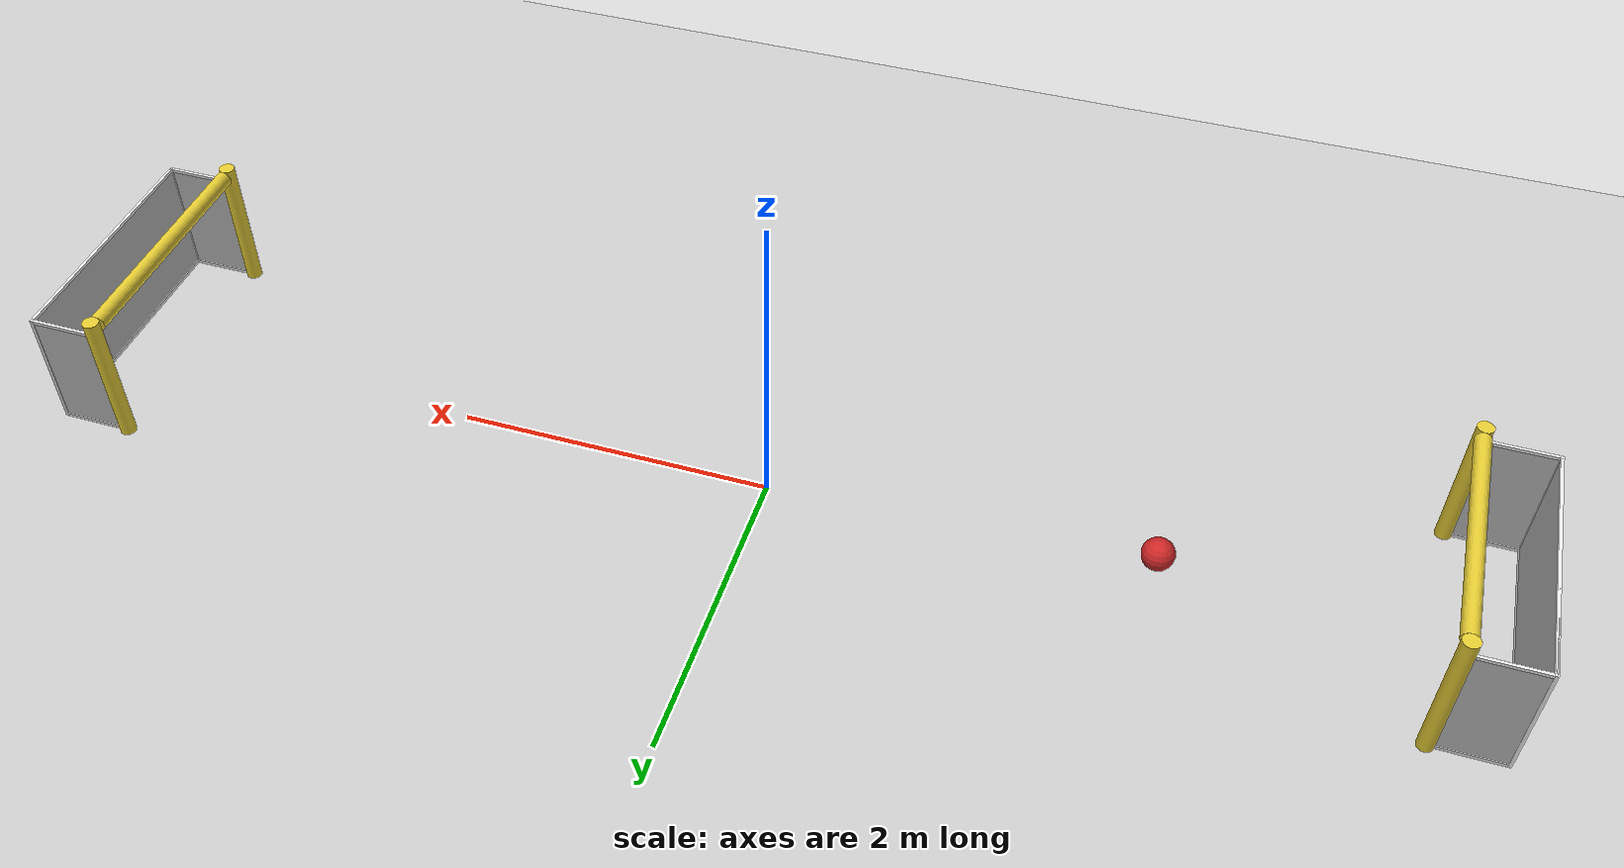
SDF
<sdf version="1.7">
 <world name="empty_world">
  <model name="ground_plane">
   <static>1</static>
   <link name="link">
    <collision name="collision">
     <geometry><plane><normal>0 0 1</normal><size>100 100</size></plane></geometry>
     <surface><friction><ode><mu>100</mu><mu2>50</mu2></ode></friction></surface>
    </collision>
    <visual name="visual">
     <cast_shadows>0</cast_shadows>
     <geometry><plane><normal>0 0 1</normal><size>100 100</size></plane></geometry>
     <material>
      <script><uri>file://media/materials/scripts/gazebo.material</uri><name>Gazebo/Grey</name></script>
     </material>
    </visual>
   </link>
  </model>
  <light name="sun" type="directional">
   <pose>0 0 10 0 -0 0</pose>
   <diffuse>0.8 0.8 0.8 1</diffuse>
   <specular>0.2 0.2 0.2 1</specular>
   <attenuation>
    <range>1000</range>
    <constant>0.9</constant>
    <linear>0.01</linear>
    <quadratic>0.001</quadratic>
   </attenuation>
   <direction>-0.5 0.1 -0.9</direction>
   <spot><inner_angle>0</inner_angle><outer_angle>0</outer_angle><falloff>0</falloff></spot>
  </light>
  <gravity>0 0 -9.8</gravity>
  <magnetic_field>6e-06 2.3e-05 -4.2e-05</magnetic_field>
  <atmosphere type="adiabatic"/>
  <physics type="ode">
   <max_step_size>0.001</max_step_size>
   <real_time_factor>1</real_time_factor>
   <real_time_update_rate>1000</real_time_update_rate>
  </physics>
  <scene><ambient>0.4 0.4 0.4 1</ambient><background>0.7 0.7 0.7 1</background><shadows>1</shadows></scene>
  <spherical_coordinates>
   <surface_model>EARTH_WGS84</surface_model>
   <latitude_deg>0</latitude_deg>
   <longitude_deg>0</longitude_deg>
   <elevation>0</elevation>
   <heading_deg>0</heading_deg>
  </spherical_coordinates>
  <model name="RoboCup 2014 SPL Goal">
   <static>1</static>
   <link name="left_post">
    <pose>0 0.8 0.45 0 -0 0</pose>
    <collision name="collision">
     <geometry><cylinder><radius>0.05</radius><length>0.9</length></cylinder></geometry>
    </collision>
    <visual name="visual">
     <geometry><cylinder><radius>0.05</radius><length>0.9</length></cylinder></geometry>
     <material>
      <script><uri>file://media/materials/scripts/gazebo.material</uri><name>Gazebo/ZincYellow</name></script>
     </material>
    </visual>
   </link>
   <link name="left_support_horiz_lower">
    <pose>0.24 0.8 0.01 0 -0 0</pose>
    <collision name="collision"><geometry><box><size>0.38 0.02 0.02</size></box></geometry></collision>
    <visual name="visual">
     <geometry><box><size>0.38 0.02 0.02</size></box></geometry>
     <material>
      <script><uri>file://media/materials/scripts/gazebo.material</uri><name>Gazebo/White</name></script>
     </material>
    </visual>
   </link>
   <link name="left_support_horiz_upper">
    <pose>0.24 0.8 0.79 0 -0 0</pose>
    <collision name="collision"><geometry><box><size>0.38 0.02 0.02</size></box></geometry></collision>
    <visual name="visual">
     <geometry><box><size>0.38 0.02 0.02</size></box></geometry>
     <material>
      <script><uri>file://media/materials/scripts/gazebo.material</uri><name>Gazebo/White</name></script>
     </material>
    </visual>
   </link>
   <link name="left_support_vertical">
    <pose>0.44 0.8 0.4 3.14159 1.57079 3.14159</pose>
    <collision name="collision"><geometry><box><size>0.8 0.02 0.02</size></box></geometry></collision>
    <visual name="visual">
     <geometry><box><size>0.8 0.02 0.02</size></box></geometry>
     <material>
      <script><uri>file://media/materials/scripts/gazebo.material</uri><name>Gazebo/White</name></script>
     </material>
    </visual>
   </link>
   <link name="right_support_horiz_lower">
    <pose>0.24 -0.8 0.01 0 -0 0</pose>
    <collision name="collision"><geometry><box><size>0.38 0.02 0.02</size></box></geometry></collision>
    <visual name="visual">
     <geometry><box><size>0.38 0.02 0.02</size></box></geometry>
     <material>
      <script><uri>file://media/materials/scripts/gazebo.material</uri><name>Gazebo/White</name></script>
     </material>
    </visual>
   </link>
   <link name="right_support_horiz_upper">
    <pose>0.24 -0.8 0.79 0 -0 0</pose>
    <collision name="collision"><geometry><box><size>0.38 0.02 0.02</size></box></geometry></collision>
    <visual name="visual">
     <geometry><box><size>0.38 0.02 0.02</size></box></geometry>
     <material>
      <script><uri>file://media/materials/scripts/gazebo.material</uri><name>Gazebo/White</name></script>
     </material>
    </visual>
   </link>
   <link name="right_support_vertical">
    <pose>0.44 -0.8 0.4 3.14159 1.57079 3.14159</pose>
    <collision name="collision"><geometry><box><size>0.8 0.02 0.02</size></box></geometry></collision>
    <visual name="visual">
     <geometry><box><size>0.8 0.02 0.02</size></box></geometry>
     <material>
      <script><uri>file://media/materials/scripts/gazebo.material</uri><name>Gazebo/White</name></script>
     </material>
    </visual>
   </link>
   <link name="center_support_horiz_lower">
    <pose>0.44 0 0.01 3.14159 1.57079 3.14159</pose>
    <collision name="collision"><geometry><box><size>0.02 1.58 0.02</size></box></geometry></collision>
    <visual name="visual">
     <geometry><box><size>0.02 1.58 0.02</size></box></geometry>
     <material>
      <script><uri>file://media/materials/scripts/gazebo.material</uri><name>Gazebo/White</name></script>
     </material>
    </visual>
   </link>
   <link name="center_support_horiz_upper">
    <pose>0.44 0 0.79 3.14159 1.57079 3.14159</pose>
    <collision name="collision"><geometry><box><size>0.02 1.58 0.02</size></box></geometry></collision>
    <visual name="visual">
     <geometry><box><size>0.02 1.58 0.02</size></box></geometry>
     <material>
      <script><uri>file://media/materials/scripts/gazebo.material</uri><name>Gazebo/White</name></script>
     </material>
    </visual>
   </link>
   <link name="right_post">
    <pose>0 -0.8 0.45 0 -0 0</pose>
    <collision name="collision">
     <geometry><cylinder><radius>0.05</radius><length>0.9</length></cylinder></geometry>
    </collision>
    <visual name="visual">
     <geometry><cylinder><radius>0.05</radius><length>0.9</length></cylinder></geometry>
     <material>
      <script><uri>file://media/materials/scripts/gazebo.material</uri><name>Gazebo/ZincYellow</name></script>
     </material>
    </visual>
   </link>
   <link name="crossbar">
    <pose>0 0 0.85 1.57 1.57 0</pose>
    <collision name="collision">
     <geometry><cylinder><radius>0.05</radius><length>1.5</length></cylinder></geometry>
    </collision>
    <visual name="visual">
     <geometry><cylinder><radius>0.05</radius><length>1.5</length></cylinder></geometry>
     <material>
      <script><uri>file://media/materials/scripts/gazebo.material</uri><name>Gazebo/ZincYellow</name></script>
     </material>
    </visual>
   </link>
   <link name="center_net">
    <pose>0.44 0 0.4 0 -0 0</pose>
    <collision name="collision"><geometry><box><size>0.01 1.6 0.8</size></box></geometry></collision>
    <visual name="visual">
     <geometry><box><size>0.01 1.6 0.8</size></box></geometry>
     <material>
      <script>
       <uri>model://robocup09_spl_field/materials/scripts/</uri>
       <uri>model://robocup09_spl_field/materials/textures/</uri>
       <name>RoboCup/Net</name>
      </script>
     </material>
    </visual>
   </link>
   <link name="left_net">
    <pose>0.24 0.8 0.4 0 -0 0</pose>
    <collision name="collision"><geometry><box><size>0.38 0.01 0.76</size></box></geometry></collision>
    <visual name="visual">
     <geometry><box><size>0.38 0.01 0.76</size></box></geometry>
     <material>
      <script>
       <uri>model://robocup09_spl_field/materials/scripts/</uri>
       <uri>model://robocup09_spl_field/materials/textures/</uri>
       <name>RoboCup/Net</name>
      </script>
     </material>
    </visual>
   </link>
   <link name="right_net">
    <pose>0.24 -0.8 0.4 0 -0 0</pose>
    <collision name="collision"><geometry><box><size>0.38 0.01 0.76</size></box></geometry></collision>
    <visual name="visual">
     <geometry><box><size>0.38 0.01 0.76</size></box></geometry>
     <material>
      <script>
       <uri>model://robocup09_spl_field/materials/scripts/</uri>
       <uri>model://robocup09_spl_field/materials/textures/</uri>
       <name>RoboCup/Net</name>
      </script>
     </material>
    </visual>
   </link>
   <pose>4.00021 -0.051118 0 0 -0 0</pose>
  </model>
  <model name="RoboCup 2014 SPL Goal_0">
   <static>1</static>
   <link name="left_post">
    <pose>0 0.8 0.45 0 -0 0</pose>
    <collision name="collision">
     <geometry><cylinder><radius>0.05</radius><length>0.9</length></cylinder></geometry>
    </collision>
    <visual name="visual">
     <geometry><cylinder><radius>0.05</radius><length>0.9</length></cylinder></geometry>
     <material>
      <script><uri>file://media/materials/scripts/gazebo.material</uri><name>Gazebo/ZincYellow</name></script>
     </material>
    </visual>
   </link>
   <link name="left_support_horiz_lower">
    <pose>0.24 0.8 0.01 0 -0 0</pose>
    <collision name="collision"><geometry><box><size>0.38 0.02 0.02</size></box></geometry></collision>
    <visual name="visual">
     <geometry><box><size>0.38 0.02 0.02</size></box></geometry>
     <material>
      <script><uri>file://media/materials/scripts/gazebo.material</uri><name>Gazebo/White</name></script>
     </material>
    </visual>
   </link>
   <link name="left_support_horiz_upper">
    <pose>0.24 0.8 0.79 0 -0 0</pose>
    <collision name="collision"><geometry><box><size>0.38 0.02 0.02</size></box></geometry></collision>
    <visual name="visual">
     <geometry><box><size>0.38 0.02 0.02</size></box></geometry>
     <material>
      <script><uri>file://media/materials/scripts/gazebo.material</uri><name>Gazebo/White</name></script>
     </material>
    </visual>
   </link>
   <link name="left_support_vertical">
    <pose>0.44 0.8 0.4 3.14159 1.57079 3.14159</pose>
    <collision name="collision"><geometry><box><size>0.8 0.02 0.02</size></box></geometry></collision>
    <visual name="visual">
     <geometry><box><size>0.8 0.02 0.02</size></box></geometry>
     <material>
      <script><uri>file://media/materials/scripts/gazebo.material</uri><name>Gazebo/White</name></script>
     </material>
    </visual>
   </link>
   <link name="right_support_horiz_lower">
    <pose>0.24 -0.8 0.01 0 -0 0</pose>
    <collision name="collision"><geometry><box><size>0.38 0.02 0.02</size></box></geometry></collision>
    <visual name="visual">
     <geometry><box><size>0.38 0.02 0.02</size></box></geometry>
     <material>
      <script><uri>file://media/materials/scripts/gazebo.material</uri><name>Gazebo/White</name></script>
     </material>
    </visual>
   </link>
   <link name="right_support_horiz_upper">
    <pose>0.24 -0.8 0.79 0 -0 0</pose>
    <collision name="collision"><geometry><box><size>0.38 0.02 0.02</size></box></geometry></collision>
    <visual name="visual">
     <geometry><box><size>0.38 0.02 0.02</size></box></geometry>
     <material>
      <script><uri>file://media/materials/scripts/gazebo.material</uri><name>Gazebo/White</name></script>
     </material>
    </visual>
   </link>
   <link name="right_support_vertical">
    <pose>0.44 -0.8 0.4 3.14159 1.57079 3.14159</pose>
    <collision name="collision"><geometry><box><size>0.8 0.02 0.02</size></box></geometry></collision>
    <visual name="visual">
     <geometry><box><size>0.8 0.02 0.02</size></box></geometry>
     <material>
      <script><uri>file://media/materials/scripts/gazebo.material</uri><name>Gazebo/White</name></script>
     </material>
    </visual>
   </link>
   <link name="center_support_horiz_lower">
    <pose>0.44 0 0.01 3.14159 1.57079 3.14159</pose>
    <collision name="collision"><geometry><box><size>0.02 1.58 0.02</size></box></geometry></collision>
    <visual name="visual">
     <geometry><box><size>0.02 1.58 0.02</size></box></geometry>
     <material>
      <script><uri>file://media/materials/scripts/gazebo.material</uri><name>Gazebo/White</name></script>
     </material>
    </visual>
   </link>
   <link name="center_support_horiz_upper">
    <pose>0.44 0 0.79 3.14159 1.57079 3.14159</pose>
    <collision name="collision"><geometry><box><size>0.02 1.58 0.02</size></box></geometry></collision>
    <visual name="visual">
     <geometry><box><size>0.02 1.58 0.02</size></box></geometry>
     <material>
      <script><uri>file://media/materials/scripts/gazebo.material</uri><name>Gazebo/White</name></script>
     </material>
    </visual>
   </link>
   <link name="right_post">
    <pose>0 -0.8 0.45 0 -0 0</pose>
    <collision name="collision">
     <geometry><cylinder><radius>0.05</radius><length>0.9</length></cylinder></geometry>
    </collision>
    <visual name="visual">
     <geometry><cylinder><radius>0.05</radius><length>0.9</length></cylinder></geometry>
     <material>
      <script><uri>file://media/materials/scripts/gazebo.material</uri><name>Gazebo/ZincYellow</name></script>
     </material>
    </visual>
   </link>
   <link name="crossbar">
    <pose>0 0 0.85 1.57 1.57 0</pose>
    <collision name="collision">
     <geometry><cylinder><radius>0.05</radius><length>1.5</length></cylinder></geometry>
    </collision>
    <visual name="visual">
     <geometry><cylinder><radius>0.05</radius><length>1.5</length></cylinder></geometry>
     <material>
      <script><uri>file://media/materials/scripts/gazebo.material</uri><name>Gazebo/ZincYellow</name></script>
     </material>
    </visual>
   </link>
   <link name="center_net">
    <pose>0.44 0 0.4 0 -0 0</pose>
    <collision name="collision"><geometry><box><size>0.01 1.6 0.8</size></box></geometry></collision>
    <visual name="visual">
     <geometry><box><size>0.01 1.6 0.8</size></box></geometry>
     <material>
      <script>
       <uri>model://robocup09_spl_field/materials/scripts/</uri>
       <uri>model://robocup09_spl_field/materials/textures/</uri>
       <name>RoboCup/Net</name>
      </script>
     </material>
    </visual>
   </link>
   <link name="left_net">
    <pose>0.24 0.8 0.4 0 -0 0</pose>
    <collision name="collision"><geometry><box><size>0.38 0.01 0.76</size></box></geometry></collision>
    <visual name="visual">
     <geometry><box><size>0.38 0.01 0.76</size></box></geometry>
     <material>
      <script>
       <uri>model://robocup09_spl_field/materials/scripts/</uri>
       <uri>model://robocup09_spl_field/materials/textures/</uri>
       <name>RoboCup/Net</name>
      </script>
     </material>
    </visual>
   </link>
   <link name="right_net">
    <pose>0.24 -0.8 0.4 0 -0 0</pose>
    <collision name="collision"><geometry><box><size>0.38 0.01 0.76</size></box></geometry></collision>
    <visual name="visual">
     <geometry><box><size>0.38 0.01 0.76</size></box></geometry>
     <material>
      <script>
       <uri>model://robocup09_spl_field/materials/scripts/</uri>
       <uri>model://robocup09_spl_field/materials/textures/</uri>
       <name>RoboCup/Net</name>
      </script>
     </material>
    </visual>
   </link>
   <pose>-3.95726 -0.080503 0 0 -0 3.13262</pose>
  </model>
  <model name="RoboCup_SPL_Ball">
   <link name="ball">
    <inertial>
     <mass>0.0056</mass>
     <inertia>
      <ixx>2.37e-06</ixx>
      <iyy>2.37e-06</iyy>
      <izz>2.37e-06</izz>
      <ixy>0</ixy>
      <ixz>0</ixz>
      <iyz>0</iyz>
     </inertia>
    </inertial>
    <visual name="visual">
     <geometry><sphere><radius>0.1</radius></sphere></geometry>
     <material>
      <script><uri>file://media/materials/scripts/gazebo.material</uri><name>Gazebo/RedBright</name></script>
      <shader type="pixel"><normal_map>__default__</normal_map></shader>
      <ambient>0.87 0.26 0.07 1</ambient>
      <diffuse>0.87 0.26 0.07 1</diffuse>
      <specular>0.87 0.26 0.07 1</specular>
      <emissive>0 0 0 1</emissive>
     </material>
    </visual>
    <collision name="collision">
     <geometry><sphere><radius>0.1</radius></sphere></geometry>
     <surface>
      <friction>
       <ode><mu>1</mu><mu2>1</mu2><fdir1>0 0 0</fdir1><slip1>0</slip1><slip2>0</slip2></ode>
       <torsional>
        <coefficient>1</coefficient>
        <patch_radius>0</patch_radius>
        <surface_radius>0</surface_radius>
        <use_patch_radius>1</use_patch_radius>
        <ode><slip>0</slip></ode>
       </torsional>
      </friction>
      <bounce><restitution_coefficient>0</restitution_coefficient><threshold>1e+06</threshold></bounce>
      <contact>
       <collide_without_contact>0</collide_without_contact>
       <collide_without_contact_bitmask>1</collide_without_contact_bitmask>
       <collide_bitmask>1</collide_bitmask>
       <ode>
        <soft_cfm>0</soft_cfm>
        <soft_erp>0.2</soft_erp>
        <kp>1e+13</kp>
        <kd>1</kd>
        <max_vel>0.01</max_vel>
        <min_depth>0</min_depth>
       </ode>
       <bullet>
        <split_impulse>1</split_impulse>
        <split_impulse_penetration_threshold>-0.01</split_impulse_penetration_threshold>
        <soft_cfm>0</soft_cfm>
        <soft_erp>0.2</soft_erp>
        <kp>1e+13</kp>
        <kd>1</kd>
       </bullet>
      </contact>
     </surface>
    </collision>
   </link>
   <static>0</static>
   <pose>-2.36707 -0.002256 0.214604 0 -0 0</pose>
  </model>
 </world>
</sdf>
